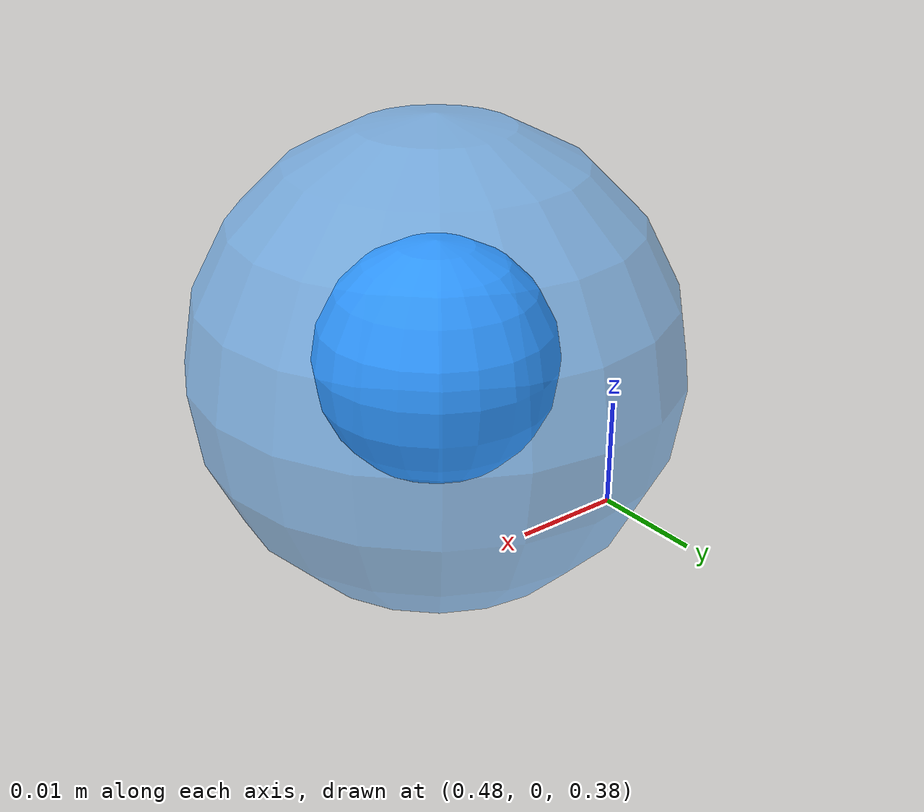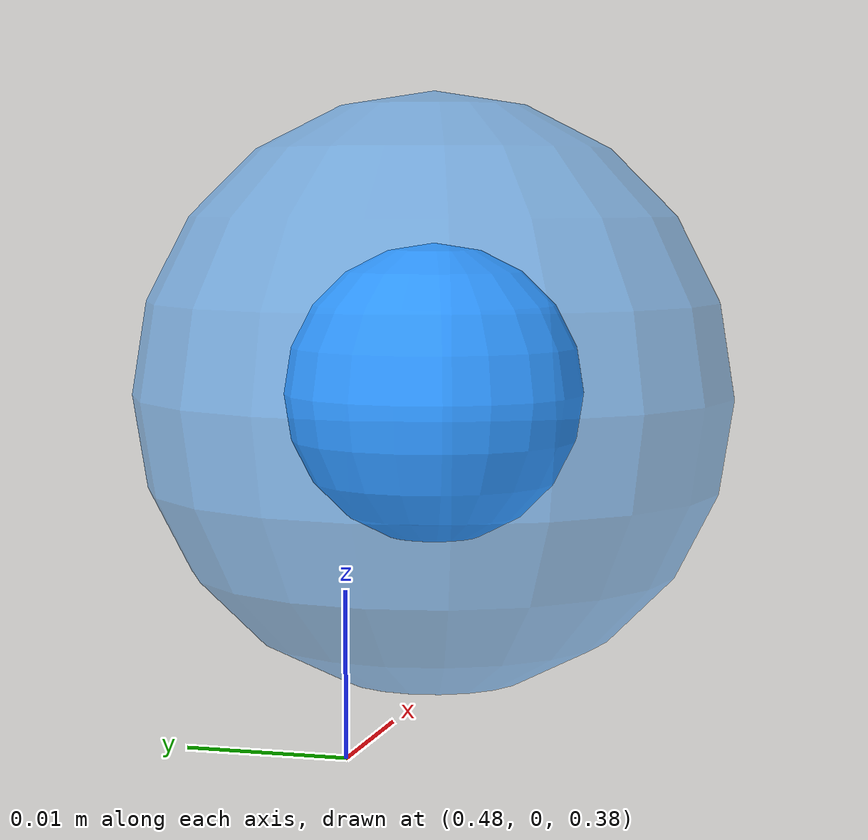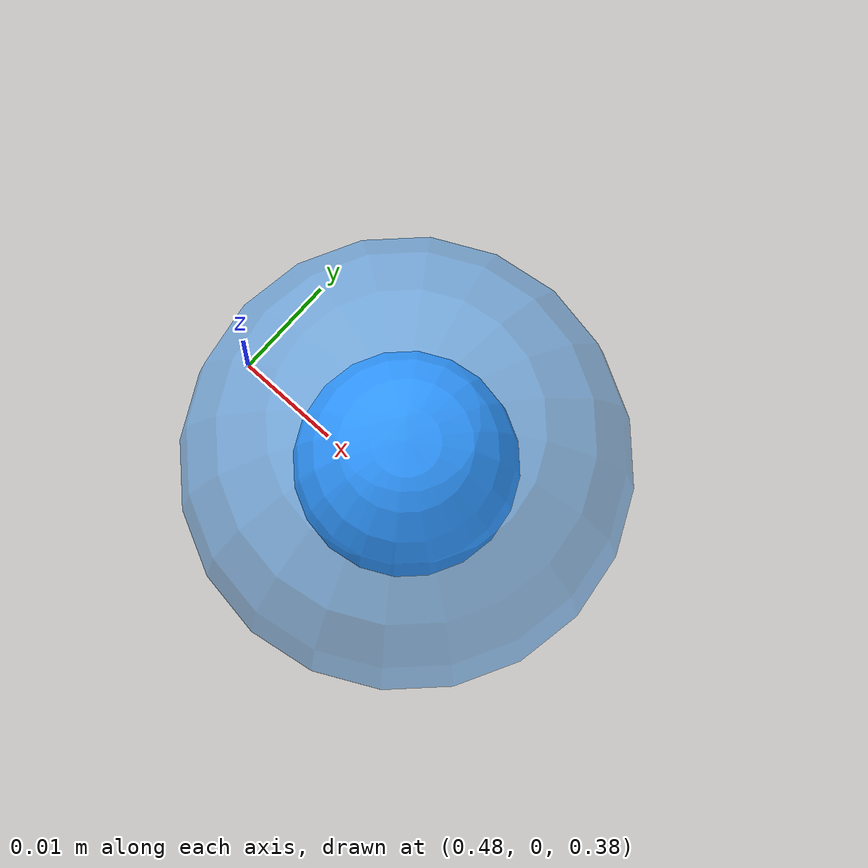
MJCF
<mujoco model="ExampleBridge">
  <size memory="50M"/>

  <custom>
    <numeric name="agent_planner" data="9"/>            <!-- FlowMPPI -->
    <numeric name="agent_horizon" data="0.20"/>
    <numeric name="agent_timestep" data="0.01"/>
    <numeric name="sampling_trajectories" data="64"/>
    <numeric name="sampling_spline_points" data="5"/>
    <numeric name="sampling_representation" data="0"/>  <!-- zero-order: dense torque -->
    <numeric name="sampling_exploration" data="1.0"/>
    <numeric name="sampling_lambda" data="10"/>
    <numeric name="sampling_dc_noise" data="1"/>
    <!-- size MUST equal model->nu or the planner calls mju_error_i. Raw N·m. -->
    <numeric name="sampling_std_per_joint" size="7" data="2 2 2 2 1 1 1"/>
  </custom>

  <worldbody>
    <light pos="0 0 2" dir="0 0 -1" directional="true"/>
    <geom name="floor" pos="0 0 0" size="0 0 0.05" type="plane"/>

    <!-- draggable reach target. quat 0 1 0 0 = gripper-down. -->
    <body name="target" mocap="true" pos="0.5 0 0.4" quat="0 1 0 0">
      <geom type="sphere" size="0.02" rgba="0.2 0.6 1 0.5" contype="0" conaffinity="0"/>
      <site name="target_site" size="0.01" rgba="0.2 0.6 1 1"/>
    </body>
  </worldbody>

  <sensor>
    <!-- user = "norm_type weight w_lower w_upper p_smooth"; ORDER must match the
         residual's concatenation order. Total user dim = 13 here. -->
    <user name="Reach_pos" dim="3" user="2 1000000 0 5000000 0.03"/>
    <user name="Reach_ori" dim="3" user="2 50000   0 500000  0.01"/>
    <user name="u_reg"     dim="7" user="2 0.01    0 1       0.01"/>

    <framepos  name="hand"               objtype="site" objname="hand_site"/>
    <framequat name="hand_orient"        objtype="site" objname="hand_site"/>
    <framepos  name="hand_target"        objtype="site" objname="target_site"/>
    <framequat name="hand_target_orient" objtype="site" objname="target_site"/>
    <framepos  name="trace0"             objtype="site" objname="hand_site"/>
  </sensor>

  <keyframe>
    <key name="home" qpos="0 -0.78539816 0 -2.35619449 0 1.57079632 0.78539816"/>
  </keyframe>
</mujoco>
